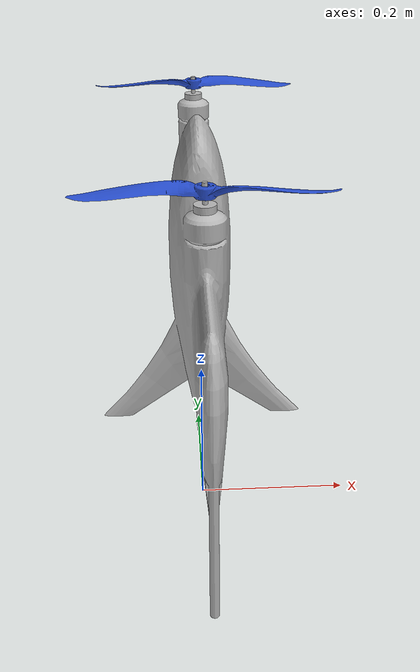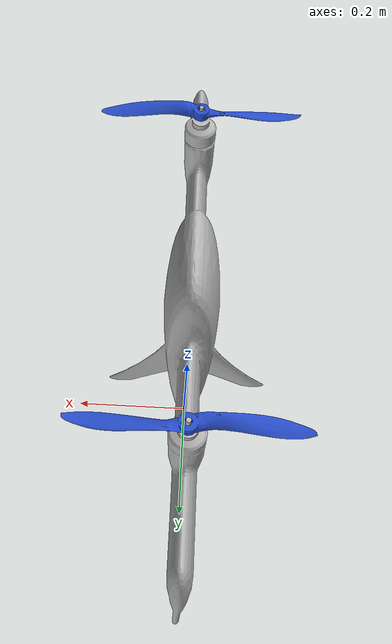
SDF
<?xml version="1.0"?>
<sdf version='1.5'>
  <model name='jebi'>
    <link name='base_link'>
      <pose>0 0 0.2 0 0 0</pose>
      <inertial>
        <pose>0 0 0 0 0 0</pose>
        <mass>1.6</mass>
        <inertia>
          <ixx>0.147563</ixx>
          <ixy>0</ixy>
          <ixz>0</ixz>
          <iyy>0.0458929</iyy>
          <iyz>0</iyz>
          <izz>0.1977</izz>
        </inertia>
      </inertial>
      <collision name='base_link_collision'>
        <pose>0 0 0 0 0 0</pose>
        <geometry>
          <box>
            <size>0.47 0.47 0.11</size>
          </box>
        </geometry>
        <surface>
          <contact>
            <ode>
              <max_vel>10</max_vel>
              <min_depth>0.01</min_depth>
            </ode>
          </contact>
          <friction>
            <ode/>
          </friction>
        </surface>
      </collision>
      <visual name='base_link_visual'>
        <pose>0 0 0.25 -1.57075 0 0</pose>
        <geometry>
          <mesh>
            <scale>1 1 1</scale>
            <uri>model://jebi/meshes/body.STL</uri>
          </mesh>
        </geometry>
      </visual>
      <gravity>1</gravity>
      <velocity_decay/>
      <self_collide>0</self_collide>
    </link>
    <link name='jebi/imu_link'>
      <pose>0 0 0 0 0 0</pose>
      <inertial>
        <pose>0 0 0 0 0 0</pose>
        <mass>0.015</mass>
        <inertia>
          <ixx>1e-05</ixx>
          <ixy>0</ixy>
          <ixz>0</ixz>
          <iyy>1e-05</iyy>
          <iyz>0</iyz>
          <izz>1e-05</izz>
        </inertia>
      </inertial>
    </link>
    <joint name='jebi/imu_joint' type='revolute'>
      <child>jebi/imu_link</child>
      <parent>base_link</parent>
      <axis>
        <xyz>1 0 0</xyz>
        <limit>
          <lower>0</lower>
          <upper>0</upper>
          <effort>0</effort>
          <velocity>0</velocity>
        </limit>
        <dynamics>
          <spring_reference>0</spring_reference>
          <spring_stiffness>0</spring_stiffness>
        </dynamics>
        <use_parent_model_frame>1</use_parent_model_frame>
      </axis>
    </joint>
    <link name='jebi/airspeed_link'>
      <pose>0 0 0 0 -1.57 0</pose>
      <inertial>
        <pose>0 0 0 0 0 0</pose>
        <mass>0.015</mass>
        <inertia>
          <ixx>1e-05</ixx>
          <ixy>0</ixy>
          <ixz>0</ixz>
          <iyy>1e-05</iyy>
          <iyz>0</iyz>
          <izz>1e-05</izz>
        </inertia>
      </inertial>
    </link>
    <joint name='jebi/airspeed_joint' type='revolute'>
      <child>jebi/airspeed_link</child>
      <parent>base_link</parent>
      <axis>
        <xyz>1 0 0</xyz>
        <limit>
          <lower>0</lower>
          <upper>0</upper>
          <effort>0</effort>
          <velocity>0</velocity>
        </limit>
        <dynamics>
          <spring_reference>0</spring_reference>
          <spring_stiffness>0</spring_stiffness>
        </dynamics>
        <use_parent_model_frame>1</use_parent_model_frame>
      </axis>
    </joint>
    <link name='fake_rotor_0'>
      <pose>0.000468 0.230774 0.530968 1.570700 0 0</pose>
      <inertial>
        <pose>0 0 0 0 0 0</pose>
        <mass>0.010</mass>
        <inertia>
          <ixx>0.00000002</ixx>
          <ixy>0</ixy>
          <ixz>0</ixz>
          <iyy>0.00000002</iyy>
          <iyz>0</iyz>
          <izz>0.00000002</izz>
        </inertia>
      </inertial>
      <collision name='fake_rotor_0_col'>
        <pose>0 0 0 0 0 0</pose>
        <geometry>
          <box>
            <size>0.01 0.01 0.01</size>
          </box>
        </geometry>
        <surface>
          <contact>
            <ode>
              <max_vel>10</max_vel>
              <min_depth>0.01</min_depth>
            </ode>
          </contact>
          <friction>
            <ode/>
          </friction>
        </surface>
      </collision>
      <visual name='fake_rotor_0_vis'>
        <pose>0 0 0 0 0 0</pose>
        <geometry>
          <mesh>
            <scale>1 1 1</scale>
            <uri>model://jebi/meshes/link1.STL</uri>
          </mesh>
        </geometry>
        <material>
          <script>
            <name>Gazebo/Blue</name>
            <uri>__default__</uri>
          </script>
        </material>
      </visual>
      <gravity>0</gravity>
      <velocity_decay/>
      <self_collide>0</self_collide>
    </link>
    <joint name='fake_rotor_0_joint' type='revolute'>
      <child>fake_rotor_0</child>
      <parent>base_link</parent>
      <axis>
        <xyz>0 0 1</xyz>
        <limit>
          <lower>0</lower>
          <upper>0</upper>
          <effort>0</effort>
          <velocity>0</velocity>
        </limit>
        <dynamics>
          <spring_reference>0</spring_reference>
          <spring_stiffness>0</spring_stiffness>
        </dynamics>
        <use_parent_model_frame>1</use_parent_model_frame>
      </axis>
    </joint>
    <link name='fake_rotor_1'>
      <pose>0.000468 -0.230642 0.530968 -1.570700 0 0</pose>
      <inertial>
        <pose>0 0 0 0 0 0</pose>
        <mass>0.010</mass>
        <inertia>
          <ixx>0.00000002</ixx>
          <ixy>0</ixy>
          <ixz>0</ixz>
          <iyy>0.00000002</iyy>
          <iyz>0</iyz>
          <izz>0.00000002</izz>
        </inertia>
      </inertial>
      <collision name='fake_rotor_1_col'>
        <pose>0 0 0 0 0 0</pose>
        <geometry>
          <box>
            <size>0.01 0.01 0.01</size>
          </box>
        </geometry>
        <surface>
          <contact>
            <ode>
              <max_vel>10</max_vel>
              <min_depth>0.01</min_depth>
            </ode>
          </contact>
          <friction>
            <ode/>
          </friction>
        </surface>
      </collision>
      <visual name='fake_rotor_1_vis'>
        <pose>0 0 0 0 0 0</pose>
        <geometry>
          <mesh>
            <scale>1 1 1</scale>
            <uri>model://jebi/meshes/link2.STL</uri>
          </mesh>
        </geometry>
        <material>
          <script>
            <name>Gazebo/Blue</name>
            <uri>__default__</uri>
          </script>
        </material>
      </visual>
      <gravity>0</gravity>
      <velocity_decay/>
      <self_collide>0</self_collide>
    </link>
    <joint name='fake_rotor_1_joint' type='revolute'>
      <child>fake_rotor_1</child>
      <parent>base_link</parent>
      <axis>
        <xyz>0 0 1</xyz>
        <limit>
          <lower>0</lower>
          <upper>0</upper>
          <effort>0</effort>
          <velocity>0</velocity>
        </limit>
        <dynamics>
          <spring_reference>0</spring_reference>
          <spring_stiffness>0</spring_stiffness>
        </dynamics>
        <use_parent_model_frame>1</use_parent_model_frame>
      </axis>
    </joint>
    <link name='rotor_0'>
      <pose>0.3 -0.3 0.4 0 0 0</pose>
      <inertial>
        <pose>0 0 0 0 0 0</pose>
        <mass>0.005</mass>
        <inertia>
          <ixx>9.75e-07</ixx>
          <ixy>0</ixy>
          <ixz>0</ixz>
          <iyy>0.000166704</iyy>
          <iyz>0</iyz>
          <izz>0.000167604</izz>
        </inertia>
      </inertial>
      <collision name='rotor_0_collision'>
        <pose>0 0 0 0 0 0</pose>
        <geometry>
          <cylinder>
            <length>0.005</length>
            <radius>0.1</radius>
          </cylinder>
        </geometry>
        <surface>
          <contact>
            <ode/>
          </contact>
          <friction>
            <ode/>
          </friction>
        </surface>
      </collision>
      <gravity>1</gravity>
      <velocity_decay/>
      <self_collide>0</self_collide>
    </link>
    <joint name='rotor_0_joint' type='revolute'>
      <child>rotor_0</child>
      <parent>base_link</parent>
      <axis>
        <xyz>0 0 1</xyz>
        <limit>
          <lower>-1e+16</lower>
          <upper>1e+16</upper>
        </limit>
        <dynamics>
          <spring_reference>0</spring_reference>
          <spring_stiffness>0</spring_stiffness>
        </dynamics>
        <use_parent_model_frame>1</use_parent_model_frame>
      </axis>
    </joint>
    <link name='rotor_1'>
      <pose>-0.3 0.3 0.4 0 0 0</pose>
      <inertial>
        <pose>0 0 0 0 0 0</pose>
        <mass>0.005</mass>
        <inertia>
          <ixx>9.75e-07</ixx>
          <ixy>0</ixy>
          <ixz>0</ixz>
          <iyy>0.000166704</iyy>
          <iyz>0</iyz>
          <izz>0.000167604</izz>
        </inertia>
      </inertial>
      <collision name='rotor_1_collision'>
        <pose>0 0 0 0 0 0</pose>
        <geometry>
          <cylinder>
            <length>0.005</length>
            <radius>0.1</radius>
          </cylinder>
        </geometry>
        <surface>
          <contact>
            <ode/>
          </contact>
          <friction>
            <ode/>
          </friction>
        </surface>
      </collision>
      <gravity>1</gravity>
      <velocity_decay/>
      <self_collide>0</self_collide>
    </link>
    <joint name='rotor_1_joint' type='revolute'>
      <child>rotor_1</child>
      <parent>base_link</parent>
      <axis>
        <xyz>0 0 1</xyz>
        <limit>
          <lower>-1e+16</lower>
          <upper>1e+16</upper>
        </limit>
        <dynamics>
          <spring_reference>0</spring_reference>
          <spring_stiffness>0</spring_stiffness>
        </dynamics>
        <use_parent_model_frame>1</use_parent_model_frame>
      </axis>
    </joint>
    <link name='rotor_2'>
      <pose>0.3 0.3 0.4 0 0 0</pose>
      <inertial>
        <pose>0 0 0 0 0 0</pose>
        <mass>0.005</mass>
        <inertia>
          <ixx>9.75e-07</ixx>
          <ixy>0</ixy>
          <ixz>0</ixz>
          <iyy>0.000166704</iyy>
          <iyz>0</iyz>
          <izz>0.000167604</izz>
        </inertia>
      </inertial>
      <collision name='rotor_2_collision'>
        <pose>0 0 0 0 0 0</pose>
        <geometry>
          <cylinder>
            <length>0.005</length>
            <radius>0.1</radius>
          </cylinder>
        </geometry>
        <surface>
          <contact>
            <ode/>
          </contact>
          <friction>
            <ode/>
          </friction>
        </surface>
      </collision>
      <gravity>1</gravity>
      <velocity_decay/>
      <self_collide>0</self_collide>
    </link>
    <joint name='rotor_2_joint' type='revolute'>
      <child>rotor_2</child>
      <parent>base_link</parent>
      <axis>
        <xyz>0 0 1</xyz>
        <limit>
          <lower>-1e+16</lower>
          <upper>1e+16</upper>
        </limit>
        <dynamics>
          <spring_reference>0</spring_reference>
          <spring_stiffness>0</spring_stiffness>
        </dynamics>
        <use_parent_model_frame>1</use_parent_model_frame>
      </axis>
    </joint>
    <link name='rotor_3'>
      <pose>-0.3 -0.3 0.4 0 0 0</pose>
      <inertial>
        <pose>0 0 0 0 0 0</pose>
        <mass>0.005</mass>
        <inertia>
          <ixx>9.75e-07</ixx>
          <ixy>0</ixy>
          <ixz>0</ixz>
          <iyy>0.000166704</iyy>
          <iyz>0</iyz>
          <izz>0.000167604</izz>
        </inertia>
      </inertial>
      <collision name='rotor_3_collision'>
        <pose>0 0 0 0 0 0</pose>
        <geometry>
          <cylinder>
            <length>0.005</length>
            <radius>0.1</radius>
          </cylinder>
        </geometry>
        <surface>
          <contact>
            <ode/>
          </contact>
          <friction>
            <ode/>
          </friction>
        </surface>
      </collision>
      <gravity>1</gravity>
      <velocity_decay/>
      <self_collide>0</self_collide>
    </link>
    <joint name='rotor_3_joint' type='revolute'>
      <child>rotor_3</child>
      <parent>base_link</parent>
      <axis>
        <xyz>0 0 1</xyz>
        <limit>
          <lower>-1e+16</lower>
          <upper>1e+16</upper>
        </limit>
        <dynamics>
          <spring_reference>0</spring_reference>
          <spring_stiffness>0</spring_stiffness>
        </dynamics>
        <use_parent_model_frame>1</use_parent_model_frame>
      </axis>
    </joint>
    <link name="left_elevon">
      <inertial>
        <mass>0.00000001</mass>
        <inertia>
          <ixx>0.000001</ixx>
          <ixy>0.0</ixy>
          <iyy>0.000001</iyy>
          <ixz>0.0</ixz>
          <iyz>0.0</iyz>
          <izz>0.000001</izz>
        </inertia>
        <pose>0 0.3 -0.3 0.00 0 0.0</pose>
      </inertial>
      <visual name='subak'>
        <pose>0 -0.101324 0.289097 0 -1.570786 0</pose>
        <geometry>
          <mesh>
            <scale>1 1 1</scale>
            <uri>model://jebi/meshes/link3.STL</uri>
          </mesh>
        </geometry>
      </visual>
    </link>
    <link name="right_elevon">
      <inertial>
        <mass>0.00000001</mass>
        <inertia>
          <ixx>0.000001</ixx>
          <ixy>0.0</ixy>
          <iyy>0.000001</iyy>
          <ixz>0.0</ixz>
          <iyz>0.0</iyz>
          <izz>0.000001</izz>
        </inertia>
        <pose>0 -0.3 -0.3 0.00 0 0.0</pose>
      </inertial>
      <visual name='subak2'>
        <pose>0 0.101324 0.289097 0 -1.570786 0</pose>
        <geometry>
          <mesh>
            <scale>1 1 1</scale>
            <uri>model://jebi/meshes/link4.STL</uri>
          </mesh>
        </geometry>
      </visual>
    </link>
    <link name="rudder">
      <inertial>
        <mass>0.00000001</mass>
        <inertia>
          <ixx>0.000001</ixx>
          <ixy>0.0</ixy>
          <iyy>0.000001</iyy>
          <ixz>0.0</ixz>
          <iyz>0.0</iyz>
          <izz>0.000001</izz>
        </inertia>
        <pose>0 0 -0.5 0.00 0 0.0</pose>
      </inertial>
    </link>
    <joint name='left_elevon_joint' type='revolute'>
      <parent>base_link</parent>
      <child>left_elevon</child>
      <pose>0 0.3 -0.25 0.00 0 0.0</pose>
      <axis>
        <xyz>0 1 0</xyz>
        <limit>
          <!-- -30/+30 deg. -->
          <lower>-0.53</lower>
          <upper>0.53</upper>
        </limit>
        <dynamics>
          <damping>1.000</damping>
        </dynamics>
      </axis>
      <physics>
        <ode>
          <implicit_spring_damper>1</implicit_spring_damper>
        </ode>
      </physics>
    </joint>
    <joint name='right_elevon_joint' type='revolute'>
      <parent>base_link</parent>
      <child>right_elevon</child>
      <pose>0 -0.3 -0.25 0.00 0 0.0</pose>
      <axis>
        <xyz>0 1 0</xyz>
        <limit>
          <!-- -30/+30 deg. -->
          <lower>-0.53</lower>
          <upper>0.53</upper>
        </limit>
        <dynamics>
          <damping>1.000</damping>
        </dynamics>
      </axis>
      <physics>
        <ode>
          <implicit_spring_damper>1</implicit_spring_damper>
        </ode>
      </physics>
    </joint>
    <joint name='rudder_joint' type='revolute'>
      <parent>base_link</parent>
      <child>rudder</child>
      <pose>0 0 -0.5 0.00 0 0.0</pose>
      <axis>
        <xyz>1 0 0</xyz>
        <limit>
          <!-- -30/+30 deg. -->
          <lower>-0.01</lower>
          <upper>0.01</upper>
        </limit>
        <dynamics>
          <damping>1.000</damping>
        </dynamics>
      </axis>
      <physics>
        <ode>
          <implicit_spring_damper>1</implicit_spring_damper>
        </ode>
      </physics>
    </joint>
    <include>
      <uri>model://gps</uri>
      <pose>0 0 0.5 0 -1.57 0</pose>
      <name>gps</name>
    </include>
    <joint name='gps_joint' type='fixed'>
      <child>gps::link</child>
      <parent>base_link</parent>
    </joint>
    <plugin name="left_wing" filename="libLiftDragPlugin.so">
      <a0>0.05984281113</a0>
      <cla>4.752798721</cla>
      <cda>0.6417112299</cda>
      <cma>0.0</cma>
      <alpha_stall>0.6391428111</alpha_stall>
      <cla_stall>-3.85</cla_stall>
      <cda_stall>-0.9233984055</cda_stall>
      <cma_stall>0</cma_stall>
      <cm_delta>-0.3</cm_delta>
      <cp>0 0.3 0.0</cp>
      <area>0.15</area>
      <air_density>1.2041</air_density>
      <forward>0 0 1</forward>
      <upward>-1 0 0</upward>
      <link_name>base_link</link_name>
      <control_joint_name>
        left_elevon_joint
      </control_joint_name>
      <control_joint_rad_to_cl>-0.5</control_joint_rad_to_cl>
      <robotNamespace></robotNamespace>
      <windSubTopic>world_wind</windSubTopic>
    </plugin>
    <plugin name="right_wing" filename="libLiftDragPlugin.so">
      <a0>0.05984281113</a0>
      <cla>4.752798721</cla>
      <cda>0.6417112299</cda>
      <cma>0.0</cma>
      <alpha_stall>0.6391428111</alpha_stall>
      <cla_stall>-3.85</cla_stall>
      <cda_stall>-0.9233984055</cda_stall>
      <cma_stall>0</cma_stall>
      <cm_delta>-0.3</cm_delta>
      <cp>0 -0.3 -0.0</cp>
      <area>0.15</area>
      <air_density>1.2041</air_density>
      <forward>0 0 1</forward>
      <upward>-1 0 0</upward>
      <link_name>base_link</link_name>
      <control_joint_name>
        right_elevon_joint
      </control_joint_name>
      <control_joint_rad_to_cl>-0.5</control_joint_rad_to_cl>
      <robotNamespace></robotNamespace>
      <windSubTopic>world_wind</windSubTopic>
    </plugin>
    <plugin name="rudder" filename="libLiftDragPlugin.so">
      <a0>0.0</a0>
      <cla>4.752798721</cla>
      <cda>0.6417112299</cda>
      <cma>0.0</cma>
      <alpha_stall>0.3391428111</alpha_stall>
      <cla_stall>-3.85</cla_stall>
      <cda_stall>-0.9233984055</cda_stall>
      <cma_stall>0</cma_stall>
      <cp>-0.1 0 -0.5</cp>
      <area>0.05</area>
      <air_density>1.2041</air_density>
      <forward>0 0 1</forward>
      <upward>0 1 0</upward>
      <link_name>base_link</link_name>
      <robotNamespace></robotNamespace>
      <windSubTopic>world_wind</windSubTopic>
    </plugin>
    <plugin name='rosbag' filename='libgazebo_multirotor_base_plugin.so'>
      <robotNamespace></robotNamespace>
      <linkName>base_link</linkName>
      <rotorVelocitySlowdownSim>10</rotorVelocitySlowdownSim>
    </plugin>
    <plugin name='front_right_motor_model' filename='libgazebo_motor_model.so'>
      <robotNamespace></robotNamespace>
      <jointName>rotor_0_joint</jointName>
      <linkName>rotor_0</linkName>
      <turningDirection>ccw</turningDirection>
      <timeConstantUp>0.0125</timeConstantUp>
      <timeConstantDown>0.025</timeConstantDown>
      <maxRotVelocity>1200</maxRotVelocity>
      <motorConstant>8.54858e-06</motorConstant>
      <momentConstant>0.06</momentConstant>
      <commandSubTopic>/gazebo/command/motor_speed</commandSubTopic>
      <motorNumber>0</motorNumber>
      <rotorDragCoefficient>8.06428e-05</rotorDragCoefficient>
      <rollingMomentCoefficient>1e-06</rollingMomentCoefficient>
      <motorSpeedPubTopic>/motor_speed/0</motorSpeedPubTopic>
      <rotorVelocitySlowdownSim>10</rotorVelocitySlowdownSim>
    </plugin>
    <plugin name='back_left_motor_model' filename='libgazebo_motor_model.so'>
      <robotNamespace></robotNamespace>
      <jointName>rotor_1_joint</jointName>
      <linkName>rotor_1</linkName>
      <turningDirection>ccw</turningDirection>
      <timeConstantUp>0.0125</timeConstantUp>
      <timeConstantDown>0.025</timeConstantDown>
      <maxRotVelocity>1200</maxRotVelocity>
      <motorConstant>8.54858e-06</motorConstant>
      <momentConstant>0.06</momentConstant>
      <commandSubTopic>/gazebo/command/motor_speed</commandSubTopic>
      <motorNumber>1</motorNumber>
      <rotorDragCoefficient>8.06428e-05</rotorDragCoefficient>
      <rollingMomentCoefficient>1e-06</rollingMomentCoefficient>
      <motorSpeedPubTopic>/motor_speed/1</motorSpeedPubTopic>
      <rotorVelocitySlowdownSim>10</rotorVelocitySlowdownSim>
    </plugin>
    <plugin name='front_left_motor_model' filename='libgazebo_motor_model.so'>
      <robotNamespace></robotNamespace>
      <jointName>rotor_2_joint</jointName>
      <linkName>rotor_2</linkName>
      <turningDirection>cw</turningDirection>
      <timeConstantUp>0.0125</timeConstantUp>
      <timeConstantDown>0.025</timeConstantDown>
      <maxRotVelocity>1200</maxRotVelocity>
      <motorConstant>8.54858e-06</motorConstant>
      <momentConstant>0.06</momentConstant>
      <commandSubTopic>/gazebo/command/motor_speed</commandSubTopic>
      <motorNumber>2</motorNumber>
      <rotorDragCoefficient>8.06428e-05</rotorDragCoefficient>
      <rollingMomentCoefficient>1e-06</rollingMomentCoefficient>
      <motorSpeedPubTopic>/motor_speed/2</motorSpeedPubTopic>
      <rotorVelocitySlowdownSim>10</rotorVelocitySlowdownSim>
    </plugin>
    <plugin name='back_right_motor_model' filename='libgazebo_motor_model.so'>
      <robotNamespace></robotNamespace>
      <jointName>rotor_3_joint</jointName>
      <linkName>rotor_3</linkName>
      <turningDirection>cw</turningDirection>
      <timeConstantUp>0.0125</timeConstantUp>
      <timeConstantDown>0.025</timeConstantDown>
      <maxRotVelocity>1200</maxRotVelocity>
      <motorConstant>8.54858e-06</motorConstant>
      <momentConstant>0.06</momentConstant>
      <commandSubTopic>/gazebo/command/motor_speed</commandSubTopic>
      <motorNumber>3</motorNumber>
      <rotorDragCoefficient>8.06428e-05</rotorDragCoefficient>
      <rollingMomentCoefficient>1e-06</rollingMomentCoefficient>
      <motorSpeedPubTopic>/motor_speed/3</motorSpeedPubTopic>
      <rotorVelocitySlowdownSim>10</rotorVelocitySlowdownSim>
    </plugin>
    <plugin name='gazebo_imu_plugin' filename='libgazebo_imu_plugin.so'>
      <robotNamespace></robotNamespace>
      <linkName>jebi/imu_link</linkName>
      <imuTopic>/imu</imuTopic>
      <gyroscopeNoiseDensity>0.0003394</gyroscopeNoiseDensity>
      <gyroscopeRandomWalk>3.8785e-05</gyroscopeRandomWalk>
      <gyroscopeBiasCorrelationTime>1000.0</gyroscopeBiasCorrelationTime>
      <gyroscopeTurnOnBiasSigma>0.0087</gyroscopeTurnOnBiasSigma>
      <accelerometerNoiseDensity>0.004</accelerometerNoiseDensity>
      <accelerometerRandomWalk>0.006</accelerometerRandomWalk>
      <accelerometerBiasCorrelationTime>300.0</accelerometerBiasCorrelationTime>
      <accelerometerTurnOnBiasSigma>0.196</accelerometerTurnOnBiasSigma>
    </plugin>
    <plugin name='groundtruth_plugin' filename='libgazebo_groundtruth_plugin.so'>
      <robotNamespace/>
    </plugin>
    <plugin name='magnetometer_plugin' filename='libgazebo_magnetometer_plugin.so'>
      <robotNamespace/>
      <pubRate>100</pubRate>
      <noiseDensity>0.0004</noiseDensity>
      <randomWalk>6.4e-06</randomWalk>
      <biasCorrelationTime>600</biasCorrelationTime>
      <magTopic>/mag</magTopic>
    </plugin>
    <plugin name='barometer_plugin' filename='libgazebo_barometer_plugin.so'>
      <robotNamespace/>
      <pubRate>50</pubRate>
      <baroTopic>/baro</baroTopic>
    </plugin>
    <plugin name='airspeed_plugin' filename='libgazebo_airspeed_plugin.so'>
      <robotNamespace/>
      <linkName>jebi/airspeed_link</linkName>
    </plugin>
    <plugin name='mavlink_interface' filename='libgazebo_mavlink_interface.so'>
      <robotNamespace></robotNamespace>
      <imuSubTopic>/imu</imuSubTopic>
      <magSubTopic>/mag</magSubTopic>
      <baroSubTopic>/baro</baroSubTopic>
      <mavlink_addr>INADDR_ANY</mavlink_addr>
      <mavlink_udp_port>14560</mavlink_udp_port>
      <serialEnabled>false</serialEnabled>
      <serialDevice>/dev/ttyACM0</serialDevice>
      <baudRate>921600</baudRate>
      <qgc_addr>INADDR_ANY</qgc_addr>
      <qgc_udp_port>14550</qgc_udp_port>
      <sdk_addr>INADDR_ANY</sdk_addr>
      <sdk_udp_port>14540</sdk_udp_port>
      <hil_mode>false</hil_mode>
      <hil_state_level>false</hil_state_level>
      <enable_lockstep>true</enable_lockstep>
      <use_tcp>true</use_tcp>
      <motorSpeedCommandPubTopic>/gazebo/command/motor_speed</motorSpeedCommandPubTopic>
      <control_channels>
        <channel name="rotor0">
          <input_index>0</input_index>
          <input_offset>0</input_offset>
          <input_scaling>1200</input_scaling>
          <zero_position_disarmed>0</zero_position_disarmed>
          <zero_position_armed>0</zero_position_armed>
          <joint_control_type>velocity</joint_control_type>
          <joint_name>rotor_0_joint</joint_name>
        </channel>
        <channel name="rotor1">
          <input_index>1</input_index>
          <input_offset>0</input_offset>
          <input_scaling>1200</input_scaling>
          <zero_position_disarmed>0</zero_position_disarmed>
          <zero_position_armed>0</zero_position_armed>
          <joint_control_type>velocity</joint_control_type>
          <joint_name>rotor_1_joint</joint_name>
        </channel>
        <channel name="rotor2">
          <input_index>2</input_index>
          <input_offset>0</input_offset>
          <input_scaling>1200</input_scaling>
          <zero_position_disarmed>0</zero_position_disarmed>
          <zero_position_armed>0</zero_position_armed>
          <joint_control_type>velocity</joint_control_type>
          <joint_name>rotor_2_joint</joint_name>
        </channel>
        <channel name="rotor3">
          <input_index>3</input_index>
          <input_offset>0</input_offset>
          <input_scaling>1200</input_scaling>
          <zero_position_disarmed>0</zero_position_disarmed>
          <zero_position_armed>0</zero_position_armed>
          <joint_control_type>velocity</joint_control_type>
          <joint_name>rotor_3_joint</joint_name>
        </channel>
        <channel name="left_elevon">
          <input_index>5</input_index>
          <input_offset>0</input_offset>
          <input_scaling>1</input_scaling>
          <zero_position_disarmed>0</zero_position_disarmed>
          <zero_position_armed>0</zero_position_armed>
          <joint_control_type>position_kinematic</joint_control_type>
          <joint_name>left_elevon_joint</joint_name>
        </channel>
        <channel name="right_elevon">
          <input_index>6</input_index>
          <input_offset>0</input_offset>
          <input_scaling>1</input_scaling>
          <zero_position_disarmed>0</zero_position_disarmed>
          <zero_position_armed>0</zero_position_armed>
          <joint_control_type>position_kinematic</joint_control_type>
          <joint_name>right_elevon_joint</joint_name>
        </channel>
      </control_channels>
      <left_elevon_joint>
        left_elevon_joint
      </left_elevon_joint>
      <right_elevon_joint>
        right_elevon_joint
      </right_elevon_joint>
    </plugin>
    <plugin name='gazebo_jebisim_rotor0' filename='libgazebo_jebisim_rotor.so'>
      <linkName>rotor_0</linkName>
      <applyLinkName>fake_rotor_0</applyLinkName>
    </plugin>
    <plugin name='gazebo_jebisim_rotor1' filename='libgazebo_jebisim_rotor.so'>
      <linkName>rotor_1</linkName>
      <applyLinkName>fake_rotor_1</applyLinkName>
    </plugin>
    <static>0</static>
  </model>
</sdf>

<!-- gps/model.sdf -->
<sdf version="1.6">
  <model name="gps">
    <link name="link">
      <pose>0 0 0 0 0 0</pose>
      <inertial>
        <pose>0 0 0 0 0 0</pose>
        <mass>0.015</mass>
        <inertia>
          <ixx>1e-05</ixx>
          <ixy>0</ixy>
          <ixz>0</ixz>
          <iyy>1e-05</iyy>
          <iyz>0</iyz>
          <izz>1e-05</izz>
        </inertia>
      </inertial>
      <visual name="visual">
        <geometry>
          <cylinder>
            <radius>0.01</radius>
            <length>0.002</length>
          </cylinder>
        </geometry>
        <material>
          <script>
            <name>Gazebo/Black</name>
            <uri>file://usr/share/gz/gz-sim8/media/gazebo.material</uri>
          </script>
        </material>
      </visual>
      <sensor name="gps" type="gps">
        <pose>0 0 0 0 0 0</pose>
        <update_rate>5.0</update_rate>
        <always_on>true</always_on>
        <visualize>false</visualize>
        <!-- GpsSensor noise currently not used -->
        <plugin name="gps_plugin" filename="libgazebo_gps_plugin.so">
          <robotNamespace></robotNamespace>
          <gpsNoise>true</gpsNoise>
          <gpsXYRandomWalk>2.0</gpsXYRandomWalk>
          <gpsZRandomWalk>4.0</gpsZRandomWalk>
          <gpsXYNoiseDensity>2.0e-4</gpsXYNoiseDensity>
          <gpsZNoiseDensity>4.0e-4</gpsZNoiseDensity>
          <gpsVXYNoiseDensity>0.2</gpsVXYNoiseDensity>
          <gpsVZNoiseDensity>0.4</gpsVZNoiseDensity>
        </plugin>
      </sensor>
    </link>
  </model>
</sdf>
